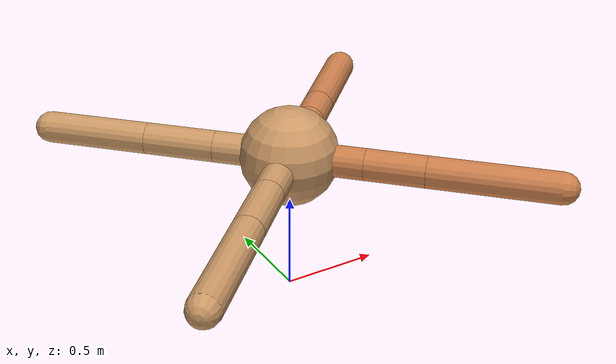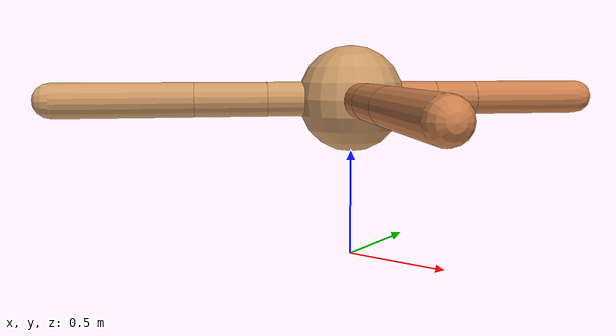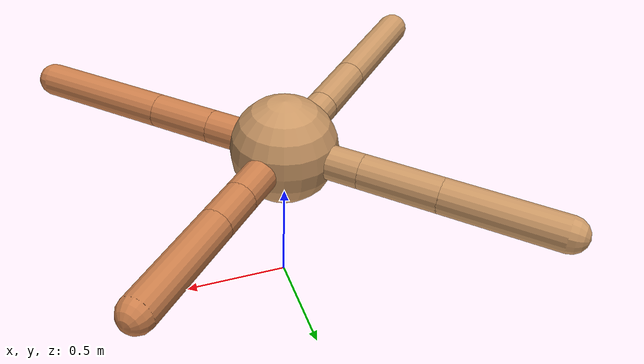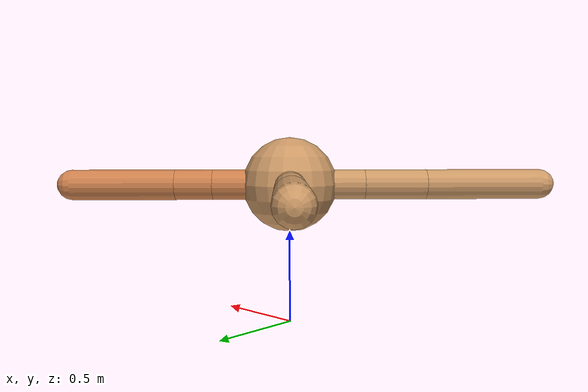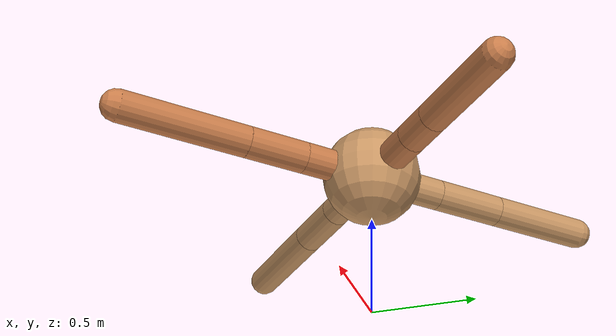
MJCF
<mujoco model="ant">
  <compiler angle="degree" coordinate="local" inertiafromgeom="true" />
  <option integrator="RK4" timestep="0.01" />
  <custom>
    <numeric data="0.0 0.0 0.55 1.0 0.0 0.0 0.0 0.0 1.0 0.0 -1.0 0.0 -1.0 0.0 1.0" name="init_qpos" />
  </custom>
  <default>
    <joint armature="1" damping="1" limited="true" />
    <geom conaffinity="0" condim="3" density="5.0" friction="1.5 0.1 0.1" margin="0.01" rgba="0.8 0.6 0.4 1" />
  </default>
  <worldbody>
    <body name="torso" pos="0 0 0.75">
      <geom name="torso_geom" pos="0 0 0" size="0.25" type="sphere" />

      <body name="front_left_leg" pos="0 0 0">
        <geom fromto="0.0 0.0 0.0 0.2881423957887857 0.2881423957887857 0.0" name="aux_1_geom" size="0.08" type="capsule" rgba=".8 .5 .3 1" />
        <body name="aux_1" pos="0.2881423957887857 0.2881423957887857 0.0">
          <joint axis="0 0 1" name="hip_1" pos="0.0 0.0 0.0" range="-40 40" type="hinge" />
          <geom fromto="0.0 0.0 0.0 0.13887350645290533 0.13887350645290533 0.0" name="left_leg_geom" size="0.08" type="capsule" rgba=".8 .5 .3 1" />
          <body pos="0.13887350645290533 0.13887350645290533 0.0" name="front_left_foot">
            <joint axis="-1 1 0" name="ankle_1" pos="0.0 0.0 0.0" range="30 100" type="hinge" />
            <geom fromto="0.0 0.0 0.0 0.37857603588050787 0.37857603588050787 0.0" name="left_ankle_geom" size="0.08" type="capsule" rgba=".8 .5 .3 1" />
          </body>
        </body>
      </body>
      <body name="front_right_leg" pos="0 0 0">
        <geom fromto="0.0 0.0 0.0 -0.2703053196778234 0.2703053196778234 0.0" name="aux_2_geom" size="0.08" type="capsule" />
        <body name="aux_2" pos="-0.2703053196778234 0.2703053196778234 0.0">
          <joint axis="0 0 1" name="hip_2" pos="0.0 0.0 0.0" range="-40 40" type="hinge" />
          <geom fromto="0.0 0.0 0.0 -0.25535873286313193 0.25535873286313193 0.0" name="right_leg_geom" size="0.08" type="capsule" />
          <body pos="-0.25535873286313193 0.25535873286313193 0.0" name="front_right_foot">
            <joint axis="1 1 0" name="ankle_2" pos="0.0 0.0 0.0" range="-100 -30" type="hinge" />
            <geom fromto="0.0 0.0 0.0 -0.3748404391071849 0.3748404391071849 0.0" name="right_ankle_geom" size="0.08" type="capsule" />
          </body>
        </body>
      </body>
      <body name="left_back_leg" pos="0 0 0">
        <geom fromto="0.0 0.0 0.0 -0.2819369412810458 -0.2819369412810458 0.0" name="aux_3_geom" size="0.08" type="capsule" />
        <body name="aux_3" pos="-0.2819369412810458 -0.2819369412810458 0.0">
          <joint axis="0 0 1" name="hip_3" pos="0.0 0.0 0.0" range="-40 40" type="hinge" />
          <geom fromto="0.0 0.0 0.0 -0.23281393523889618 -0.23281393523889618 0.0" name="back_leg_geom" size="0.08" type="capsule" />
          <body pos="-0.23281393523889618 -0.23281393523889618 0.0" name="left_back_foot">
            <joint axis="-1 1 0" name="ankle_3" pos="0.0 0.0 0.0" range="-100 -30" type="hinge" />
            <geom fromto="0.0 0.0 0.0 -0.43585901434753227 -0.43585901434753227 0.0" name="third_ankle_geom" size="0.08" type="capsule" />
          </body>
        </body>
      </body>
      <body name="right_back_leg" pos="0 0 0">
        <geom fromto="0.0 0.0 0.0 0.26927701796200604 -0.26927701796200604 0.0" name="aux_4_geom" size="0.08" type="capsule" rgba=".8 .5 .3 1" />
        <body name="aux_4" pos="0.26927701796200604 -0.26927701796200604 0.0">
          <joint axis="0 0 1" name="hip_4" pos="0.0 0.0 0.0" range="-40 40" type="hinge" />
          <geom fromto="0.0 0.0 0.0 0.21384836689203848 -0.21384836689203848 0.0" name="rightback_leg_geom" size="0.08" type="capsule" rgba=".8 .5 .3 1" />
          <body pos="0.21384836689203848 -0.21384836689203848 0.0" name="right_back_foot">
            <joint axis="1 1 0" name="ankle_4" pos="0.0 0.0 0.0" range="30 100" type="hinge" />
            <geom fromto="0.0 0.0 0.0 0.4562626237700183 -0.4562626237700183 0.0" name="fourth_ankle_geom" size="0.08" type="capsule" rgba=".8 .5 .3 1" />
          </body>
        </body>
      </body>
    </body>
  </worldbody>
  <actuator>
    <motor ctrllimited="true" ctrlrange="-1.0 1.0" joint="hip_4" gear="150" />
    <motor ctrllimited="true" ctrlrange="-1.0 1.0" joint="ankle_4" gear="150" />
    <motor ctrllimited="true" ctrlrange="-1.0 1.0" joint="hip_1" gear="150" />
    <motor ctrllimited="true" ctrlrange="-1.0 1.0" joint="ankle_1" gear="150" />
    <motor ctrllimited="true" ctrlrange="-1.0 1.0" joint="hip_2" gear="150" />
    <motor ctrllimited="true" ctrlrange="-1.0 1.0" joint="ankle_2" gear="150" />
    <motor ctrllimited="true" ctrlrange="-1.0 1.0" joint="hip_3" gear="150" />
    <motor ctrllimited="true" ctrlrange="-1.0 1.0" joint="ankle_3" gear="150" />
  </actuator>
</mujoco>
